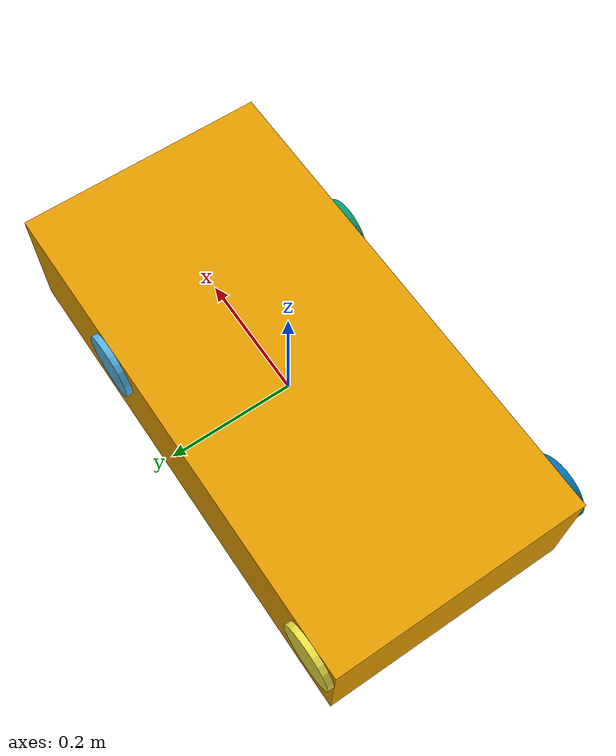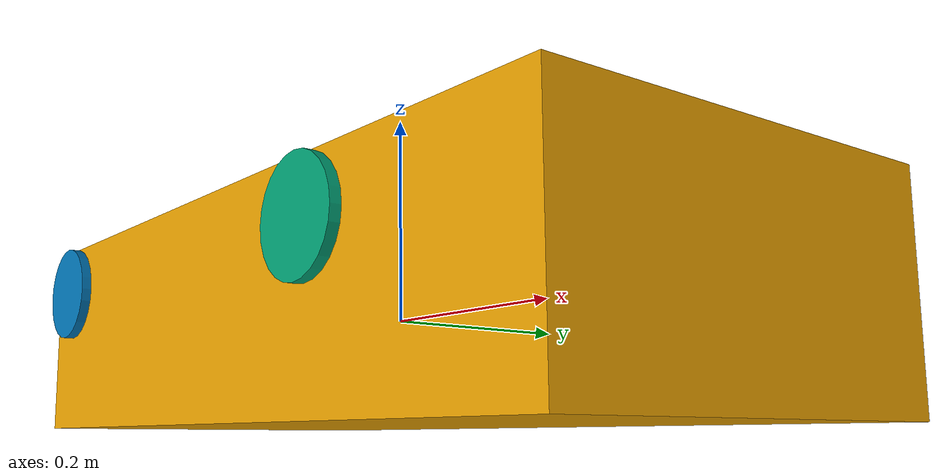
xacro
<?xml version="1.0"?>
<robot name="sliping_robot_motor" xmlns:xacro="http://ros.org/wiki/xacro">
  <!-- Base link -->
  <link name="base_link">
    <inertial>
      <mass value="5.0"/>
      <origin xyz="0 0 0"/>
      <inertia ixx="0.25" ixy="0" ixz="0" iyy="0.25" iyz="0" izz="0.25"/>
    </inertial>
    <visual>
      <geometry>
        <box size="0.8 0.4 0.2"/>
      </geometry>
    </visual>
    <collision>
      <geometry>
        <box size="0.8 0.4 0.2"/>
      </geometry>
    </collision>
  </link>

  <!-- Wheel macro -->
  <xacro:macro name="wheel" params="name x y">
    <link name="${name}_wheel">
      <inertial>
        <mass value="0.1"/>
        <origin xyz="0 0 0"/>
        <inertia ixx="0.0007" ixy="0" ixz="0" iyy="0.00013" iyz="0" izz="0.0007"/>
      </inertial>
      <visual>
        <geometry>
          <cylinder radius="0.05" length="0.02"/>
        </geometry>
        <origin rpy="-1.5708 0 0"/>
      </visual>
      <collision>
        <geometry>
          <cylinder radius="0.05" length="0.02"/>
        </geometry>
        <origin rpy="-1.5708 0 0"/>
      </collision>
    </link>

    <joint name="${name}_joint" type="continuous">
      <parent link="base_link"/>
      <child link="${name}_wheel"/>
      <origin xyz="${x} ${y} 0.05" rpy="0 0 0"/>
      <axis xyz="0 0 1"/>
      <limit effort="100" velocity="100"/>
      <dynamics damping="0.005" friction="0.01"/>
    </joint>

    <transmission name="${name}_trans">
      <type>transmission_interface/SimpleTransmission</type>
      <actuator name="${name}_motor">
        <mechanicalReduction>1</mechanicalReduction>
      </actuator>
      <joint name="${name}_joint">
        <hardwareInterface>EffortJointInterface</hardwareInterface>
      </joint>
    </transmission>
  </xacro:macro>

  <!-- Four wheels -->
  <xacro:wheel name="front_left"  x="0.15"  y=" 0.2"/>
  <xacro:wheel name="front_right" x="0.15"  y="-0.2"/>
  <xacro:wheel name="rear_left"   x="-0.35" y=" 0.2"/>
  <xacro:wheel name="rear_right"  x="-0.35" y="-0.2"/>
</robot>
